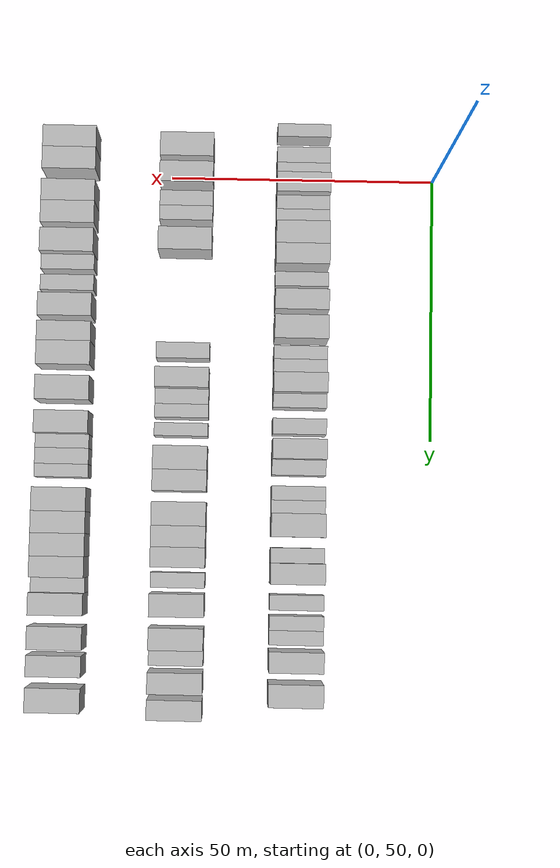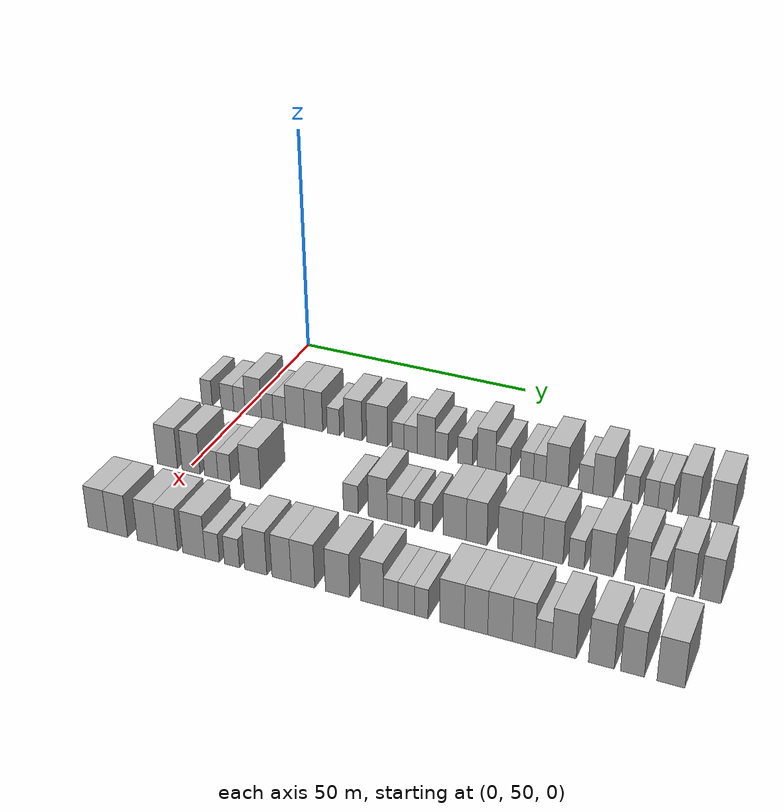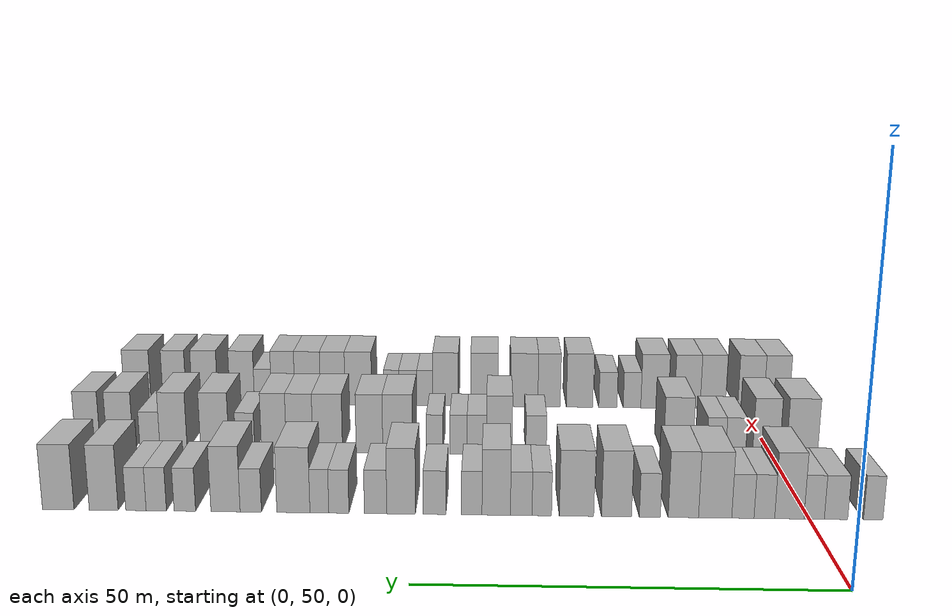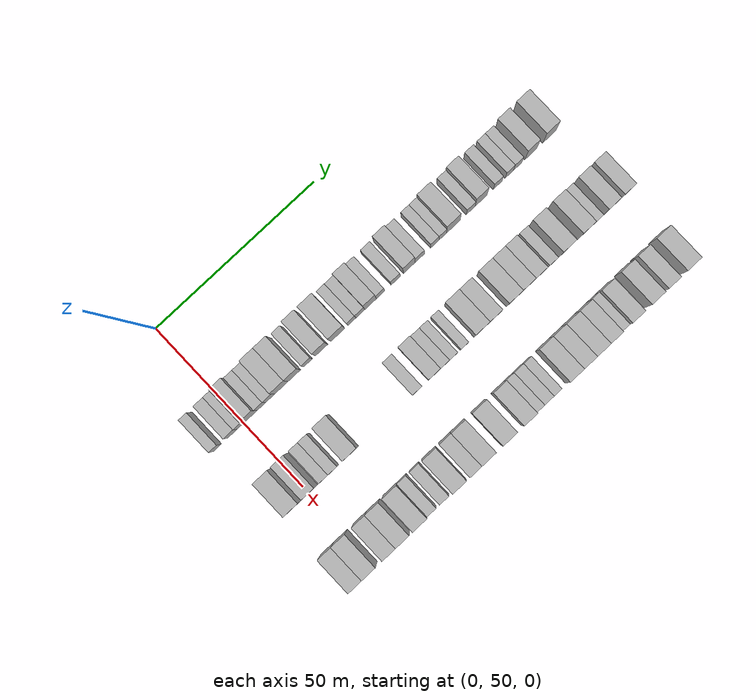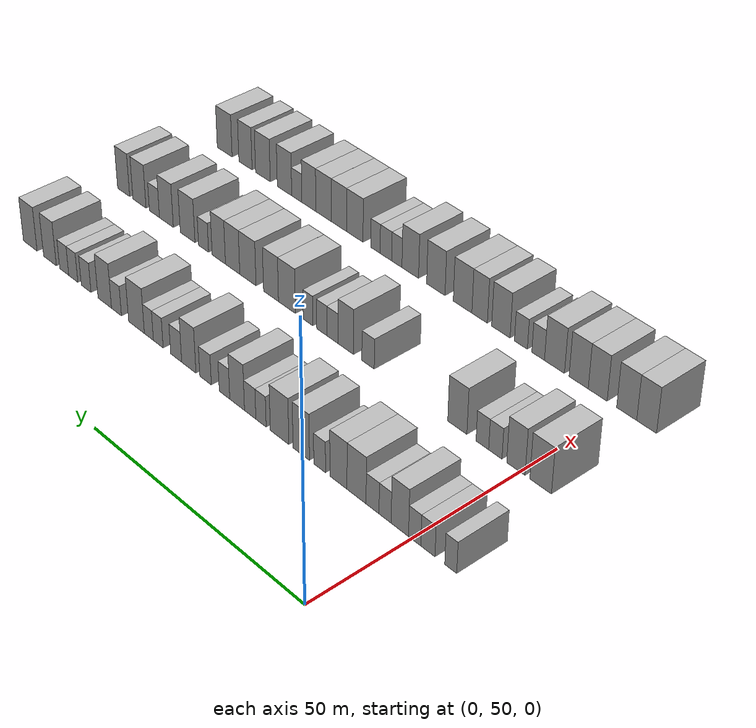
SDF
<sdf version="1.6">
 <world name="default">
  <model name="building_70">
   <static>1</static>
   <pose>25.0000 41.8707 0 0.000000 0.000000 0.000000</pose>
   <link name="link">
    <pose>0 0 3.00 0 0 0</pose>
    <collision name="collision"><geometry><box><size>10.0000 2.4584 6.0000</size></box></geometry></collision>
    <visual name="visual">
     <cast_shadows>0</cast_shadows>
     <geometry><box><size>10.0000 2.4584 6.0000</size></box></geometry>
     <material>
      <script>
       <uri>model://HANNAS_wall/materials/scripts</uri>
       <uri>model://HANNAS_wall/materials/textures</uri>
       <name>vrc/HANNAS_wall</name>
      </script>
     </material>
    </visual>
   </link>
  </model>
  <model name="building_71">
   <static>1</static>
   <pose>25.0000 46.5868 0 0.000000 0.000000 0.000000</pose>
   <link name="link">
    <pose>0 0 3.00 0 0 0</pose>
    <collision name="collision"><geometry><box><size>10.0000 2.9738 6.0000</size></box></geometry></collision>
    <visual name="visual">
     <cast_shadows>0</cast_shadows>
     <geometry><box><size>10.0000 2.9738 6.0000</size></box></geometry>
     <material>
      <script>
       <uri>model://HANNAS_wall/materials/scripts</uri>
       <uri>model://HANNAS_wall/materials/textures</uri>
       <name>vrc/HANNAS_wall</name>
      </script>
     </material>
    </visual>
   </link>
  </model>
  <model name="building_72">
   <static>1</static>
   <pose>25.0000 49.3671 0 0.000000 0.000000 0.000000</pose>
   <link name="link">
    <pose>0 0 3.00 0 0 0</pose>
    <collision name="collision"><geometry><box><size>10.0000 2.5867 6.0000</size></box></geometry></collision>
    <visual name="visual">
     <cast_shadows>0</cast_shadows>
     <geometry><box><size>10.0000 2.5867 6.0000</size></box></geometry>
     <material>
      <script>
       <uri>model://HANNAS_wall/materials/scripts</uri>
       <uri>model://HANNAS_wall/materials/textures</uri>
       <name>vrc/HANNAS_wall</name>
      </script>
     </material>
    </visual>
   </link>
  </model>
  <model name="building_73">
   <static>1</static>
   <pose>25.0000 52.5207 0 0.000000 0.000000 0.000000</pose>
   <link name="link">
    <pose>0 0 4.50 0 0 0</pose>
    <collision name="collision"><geometry><box><size>10.0000 3.7204 9.0000</size></box></geometry></collision>
    <visual name="visual">
     <cast_shadows>0</cast_shadows>
     <geometry><box><size>10.0000 3.7204 9.0000</size></box></geometry>
     <material>
      <script>
       <uri>model://HANNAS_wall/materials/scripts</uri>
       <uri>model://HANNAS_wall/materials/textures</uri>
       <name>vrc/HANNAS_wall</name>
      </script>
     </material>
    </visual>
   </link>
  </model>
  <model name="building_74">
   <static>1</static>
   <pose>25.0000 55.6958 0 0.000000 0.000000 0.000000</pose>
   <link name="link">
    <pose>0 0 3.00 0 0 0</pose>
    <collision name="collision"><geometry><box><size>10.0000 2.6298 6.0000</size></box></geometry></collision>
    <visual name="visual">
     <cast_shadows>0</cast_shadows>
     <geometry><box><size>10.0000 2.6298 6.0000</size></box></geometry>
     <material>
      <script>
       <uri>model://HANNAS_wall/materials/scripts</uri>
       <uri>model://HANNAS_wall/materials/textures</uri>
       <name>vrc/HANNAS_wall</name>
      </script>
     </material>
    </visual>
   </link>
  </model>
  <model name="building_75">
   <static>1</static>
   <pose>25.0000 58.4317 0 0.000000 0.000000 0.000000</pose>
   <link name="link">
    <pose>0 0 3.00 0 0 0</pose>
    <collision name="collision"><geometry><box><size>10.0000 2.8420 6.0000</size></box></geometry></collision>
    <visual name="visual">
     <cast_shadows>0</cast_shadows>
     <geometry><box><size>10.0000 2.8420 6.0000</size></box></geometry>
     <material>
      <script>
       <uri>model://HANNAS_wall/materials/scripts</uri>
       <uri>model://HANNAS_wall/materials/textures</uri>
       <name>vrc/HANNAS_wall</name>
      </script>
     </material>
    </visual>
   </link>
  </model>
  <model name="building_76">
   <static>1</static>
   <pose>25.0000 61.9709 0 0.000000 0.000000 0.000000</pose>
   <link name="link">
    <pose>0 0 4.50 0 0 0</pose>
    <collision name="collision"><geometry><box><size>10.0000 4.2364 9.0000</size></box></geometry></collision>
    <visual name="visual">
     <cast_shadows>0</cast_shadows>
     <geometry><box><size>10.0000 4.2364 9.0000</size></box></geometry>
     <material>
      <script>
       <uri>model://HANNAS_wall/materials/scripts</uri>
       <uri>model://HANNAS_wall/materials/textures</uri>
       <name>vrc/HANNAS_wall</name>
      </script>
     </material>
    </visual>
   </link>
  </model>
  <model name="building_77">
   <static>1</static>
   <pose>25.0000 66.0250 0 0.000000 0.000000 0.000000</pose>
   <link name="link">
    <pose>0 0 4.50 0 0 0</pose>
    <collision name="collision"><geometry><box><size>10.0000 3.8717 9.0000</size></box></geometry></collision>
    <visual name="visual">
     <cast_shadows>0</cast_shadows>
     <geometry><box><size>10.0000 3.8717 9.0000</size></box></geometry>
     <material>
      <script>
       <uri>model://HANNAS_wall/materials/scripts</uri>
       <uri>model://HANNAS_wall/materials/textures</uri>
       <name>vrc/HANNAS_wall</name>
      </script>
     </material>
    </visual>
   </link>
  </model>
  <model name="building_78">
   <static>1</static>
   <pose>25.0000 70.3104 0 0.000000 0.000000 0.000000</pose>
   <link name="link">
    <pose>0 0 3.00 0 0 0</pose>
    <collision name="collision"><geometry><box><size>10.0000 2.6993 6.0000</size></box></geometry></collision>
    <visual name="visual">
     <cast_shadows>0</cast_shadows>
     <geometry><box><size>10.0000 2.6993 6.0000</size></box></geometry>
     <material>
      <script>
       <uri>model://HANNAS_wall/materials/scripts</uri>
       <uri>model://HANNAS_wall/materials/textures</uri>
       <name>vrc/HANNAS_wall</name>
      </script>
     </material>
    </visual>
   </link>
  </model>
  <model name="building_79">
   <static>1</static>
   <pose>25.0000 74.5816 0 0.000000 0.000000 0.000000</pose>
   <link name="link">
    <pose>0 0 4.50 0 0 0</pose>
    <collision name="collision"><geometry><box><size>10.0000 3.8430 9.0000</size></box></geometry></collision>
    <visual name="visual">
     <cast_shadows>0</cast_shadows>
     <geometry><box><size>10.0000 3.8430 9.0000</size></box></geometry>
     <material>
      <script>
       <uri>model://HANNAS_wall/materials/scripts</uri>
       <uri>model://HANNAS_wall/materials/textures</uri>
       <name>vrc/HANNAS_wall</name>
      </script>
     </material>
    </visual>
   </link>
  </model>
  <model name="building_80">
   <static>1</static>
   <pose>25.0000 79.7122 0 0.000000 0.000000 0.000000</pose>
   <link name="link">
    <pose>0 0 4.50 0 0 0</pose>
    <collision name="collision"><geometry><box><size>10.0000 4.4182 9.0000</size></box></geometry></collision>
    <visual name="visual">
     <cast_shadows>0</cast_shadows>
     <geometry><box><size>10.0000 4.4182 9.0000</size></box></geometry>
     <material>
      <script>
       <uri>model://HANNAS_wall/materials/scripts</uri>
       <uri>model://HANNAS_wall/materials/textures</uri>
       <name>vrc/HANNAS_wall</name>
      </script>
     </material>
    </visual>
   </link>
  </model>
  <model name="building_81">
   <static>1</static>
   <pose>25.0000 84.1760 0 0.000000 0.000000 0.000000</pose>
   <link name="link">
    <pose>0 0 3.00 0 0 0</pose>
    <collision name="collision"><geometry><box><size>10.0000 2.5095 6.0000</size></box></geometry></collision>
    <visual name="visual">
     <cast_shadows>0</cast_shadows>
     <geometry><box><size>10.0000 2.5095 6.0000</size></box></geometry>
     <material>
      <script>
       <uri>model://HANNAS_wall/materials/scripts</uri>
       <uri>model://HANNAS_wall/materials/textures</uri>
       <name>vrc/HANNAS_wall</name>
      </script>
     </material>
    </visual>
   </link>
  </model>
  <model name="building_82">
   <static>1</static>
   <pose>25.0000 86.8219 0 0.000000 0.000000 0.000000</pose>
   <link name="link">
    <pose>0 0 3.00 0 0 0</pose>
    <collision name="collision"><geometry><box><size>10.0000 2.7822 6.0000</size></box></geometry></collision>
    <visual name="visual">
     <cast_shadows>0</cast_shadows>
     <geometry><box><size>10.0000 2.7822 6.0000</size></box></geometry>
     <material>
      <script>
       <uri>model://HANNAS_wall/materials/scripts</uri>
       <uri>model://HANNAS_wall/materials/textures</uri>
       <name>vrc/HANNAS_wall</name>
      </script>
     </material>
    </visual>
   </link>
  </model>
  <model name="building_83">
   <static>1</static>
   <pose>25.0000 90.0471 0 0.000000 0.000000 0.000000</pose>
   <link name="link">
    <pose>0 0 4.50 0 0 0</pose>
    <collision name="collision"><geometry><box><size>10.0000 3.6682 9.0000</size></box></geometry></collision>
    <visual name="visual">
     <cast_shadows>0</cast_shadows>
     <geometry><box><size>10.0000 3.6682 9.0000</size></box></geometry>
     <material>
      <script>
       <uri>model://HANNAS_wall/materials/scripts</uri>
       <uri>model://HANNAS_wall/materials/textures</uri>
       <name>vrc/HANNAS_wall</name>
      </script>
     </material>
    </visual>
   </link>
  </model>
  <model name="building_84">
   <static>1</static>
   <pose>25.0000 93.2055 0 0.000000 0.000000 0.000000</pose>
   <link name="link">
    <pose>0 0 3.00 0 0 0</pose>
    <collision name="collision"><geometry><box><size>10.0000 2.6487 6.0000</size></box></geometry></collision>
    <visual name="visual">
     <cast_shadows>0</cast_shadows>
     <geometry><box><size>10.0000 2.6487 6.0000</size></box></geometry>
     <material>
      <script>
       <uri>model://HANNAS_wall/materials/scripts</uri>
       <uri>model://HANNAS_wall/materials/textures</uri>
       <name>vrc/HANNAS_wall</name>
      </script>
     </material>
    </visual>
   </link>
  </model>
  <model name="building_85">
   <static>1</static>
   <pose>25.0000 98.0046 0 0.000000 0.000000 0.000000</pose>
   <link name="link">
    <pose>0 0 3.00 0 0 0</pose>
    <collision name="collision"><geometry><box><size>10.0000 2.9496 6.0000</size></box></geometry></collision>
    <visual name="visual">
     <cast_shadows>0</cast_shadows>
     <geometry><box><size>10.0000 2.9496 6.0000</size></box></geometry>
     <material>
      <script>
       <uri>model://HANNAS_wall/materials/scripts</uri>
       <uri>model://HANNAS_wall/materials/textures</uri>
       <name>vrc/HANNAS_wall</name>
      </script>
     </material>
    </visual>
   </link>
  </model>
  <model name="building_86">
   <static>1</static>
   <pose>25.0000 102.3375 0 0.000000 0.000000 0.000000</pose>
   <link name="link">
    <pose>0 0 4.50 0 0 0</pose>
    <collision name="collision"><geometry><box><size>10.0000 3.7161 9.0000</size></box></geometry></collision>
    <visual name="visual">
     <cast_shadows>0</cast_shadows>
     <geometry><box><size>10.0000 3.7161 9.0000</size></box></geometry>
     <material>
      <script>
       <uri>model://HANNAS_wall/materials/scripts</uri>
       <uri>model://HANNAS_wall/materials/textures</uri>
       <name>vrc/HANNAS_wall</name>
      </script>
     </material>
    </visual>
   </link>
  </model>
  <model name="building_87">
   <static>1</static>
   <pose>25.0000 105.6486 0 0.000000 0.000000 0.000000</pose>
   <link name="link">
    <pose>0 0 3.00 0 0 0</pose>
    <collision name="collision"><geometry><box><size>10.0000 2.9062 6.0000</size></box></geometry></collision>
    <visual name="visual">
     <cast_shadows>0</cast_shadows>
     <geometry><box><size>10.0000 2.9062 6.0000</size></box></geometry>
     <material>
      <script>
       <uri>model://HANNAS_wall/materials/scripts</uri>
       <uri>model://HANNAS_wall/materials/textures</uri>
       <name>vrc/HANNAS_wall</name>
      </script>
     </material>
    </visual>
   </link>
  </model>
  <model name="building_88">
   <static>1</static>
   <pose>25.0000 110.4103 0 0.000000 0.000000 0.000000</pose>
   <link name="link">
    <pose>0 0 3.00 0 0 0</pose>
    <collision name="collision"><geometry><box><size>10.0000 2.6171 6.0000</size></box></geometry></collision>
    <visual name="visual">
     <cast_shadows>0</cast_shadows>
     <geometry><box><size>10.0000 2.6171 6.0000</size></box></geometry>
     <material>
      <script>
       <uri>model://HANNAS_wall/materials/scripts</uri>
       <uri>model://HANNAS_wall/materials/textures</uri>
       <name>vrc/HANNAS_wall</name>
      </script>
     </material>
    </visual>
   </link>
  </model>
  <model name="building_89">
   <static>1</static>
   <pose>25.0000 112.9433 0 0.000000 0.000000 0.000000</pose>
   <link name="link">
    <pose>0 0 3.00 0 0 0</pose>
    <collision name="collision"><geometry><box><size>10.0000 2.4489 6.0000</size></box></geometry></collision>
    <visual name="visual">
     <cast_shadows>0</cast_shadows>
     <geometry><box><size>10.0000 2.4489 6.0000</size></box></geometry>
     <material>
      <script>
       <uri>model://HANNAS_wall/materials/scripts</uri>
       <uri>model://HANNAS_wall/materials/textures</uri>
       <name>vrc/HANNAS_wall</name>
      </script>
     </material>
    </visual>
   </link>
  </model>
  <model name="building_90">
   <static>1</static>
   <pose>25.0000 116.3250 0 0.000000 0.000000 0.000000</pose>
   <link name="link">
    <pose>0 0 4.50 0 0 0</pose>
    <collision name="collision"><geometry><box><size>10.0000 4.3145 9.0000</size></box></geometry></collision>
    <visual name="visual">
     <cast_shadows>0</cast_shadows>
     <geometry><box><size>10.0000 4.3145 9.0000</size></box></geometry>
     <material>
      <script>
       <uri>model://HANNAS_wall/materials/scripts</uri>
       <uri>model://HANNAS_wall/materials/textures</uri>
       <name>vrc/HANNAS_wall</name>
      </script>
     </material>
    </visual>
   </link>
  </model>
  <model name="building_91">
   <static>1</static>
   <pose>25.0000 121.8761 0 0.000000 0.000000 0.000000</pose>
   <link name="link">
    <pose>0 0 3.00 0 0 0</pose>
    <collision name="collision"><geometry><box><size>10.0000 2.7877 6.0000</size></box></geometry></collision>
    <visual name="visual">
     <cast_shadows>0</cast_shadows>
     <geometry><box><size>10.0000 2.7877 6.0000</size></box></geometry>
     <material>
      <script>
       <uri>model://HANNAS_wall/materials/scripts</uri>
       <uri>model://HANNAS_wall/materials/textures</uri>
       <name>vrc/HANNAS_wall</name>
      </script>
     </material>
    </visual>
   </link>
  </model>
  <model name="building_92">
   <static>1</static>
   <pose>25.0000 125.1792 0 0.000000 0.000000 0.000000</pose>
   <link name="link">
    <pose>0 0 4.50 0 0 0</pose>
    <collision name="collision"><geometry><box><size>10.0000 3.8187 9.0000</size></box></geometry></collision>
    <visual name="visual">
     <cast_shadows>0</cast_shadows>
     <geometry><box><size>10.0000 3.8187 9.0000</size></box></geometry>
     <material>
      <script>
       <uri>model://HANNAS_wall/materials/scripts</uri>
       <uri>model://HANNAS_wall/materials/textures</uri>
       <name>vrc/HANNAS_wall</name>
      </script>
     </material>
    </visual>
   </link>
  </model>
  <model name="building_93">
   <static>1</static>
   <pose>25.0000 130.4983 0 0.000000 0.000000 0.000000</pose>
   <link name="link">
    <pose>0 0 3.00 0 0 0</pose>
    <collision name="collision"><geometry><box><size>10.0000 2.8195 6.0000</size></box></geometry></collision>
    <visual name="visual">
     <cast_shadows>0</cast_shadows>
     <geometry><box><size>10.0000 2.8195 6.0000</size></box></geometry>
     <material>
      <script>
       <uri>model://HANNAS_wall/materials/scripts</uri>
       <uri>model://HANNAS_wall/materials/textures</uri>
       <name>vrc/HANNAS_wall</name>
      </script>
     </material>
    </visual>
   </link>
  </model>
  <model name="building_94">
   <static>1</static>
   <pose>25.0000 134.2378 0 0.000000 0.000000 0.000000</pose>
   <link name="link">
    <pose>0 0 3.00 0 0 0</pose>
    <collision name="collision"><geometry><box><size>10.0000 2.6595 6.0000</size></box></geometry></collision>
    <visual name="visual">
     <cast_shadows>0</cast_shadows>
     <geometry><box><size>10.0000 2.6595 6.0000</size></box></geometry>
     <material>
      <script>
       <uri>model://HANNAS_wall/materials/scripts</uri>
       <uri>model://HANNAS_wall/materials/textures</uri>
       <name>vrc/HANNAS_wall</name>
      </script>
     </material>
    </visual>
   </link>
  </model>
  <model name="building_95">
   <static>1</static>
   <pose>25.0000 136.9032 0 0.000000 0.000000 0.000000</pose>
   <link name="link">
    <pose>0 0 3.00 0 0 0</pose>
    <collision name="collision"><geometry><box><size>10.0000 2.6712 6.0000</size></box></geometry></collision>
    <visual name="visual">
     <cast_shadows>0</cast_shadows>
     <geometry><box><size>10.0000 2.6712 6.0000</size></box></geometry>
     <material>
      <script>
       <uri>model://HANNAS_wall/materials/scripts</uri>
       <uri>model://HANNAS_wall/materials/textures</uri>
       <name>vrc/HANNAS_wall</name>
      </script>
     </material>
    </visual>
   </link>
  </model>
  <model name="building_96">
   <static>1</static>
   <pose>25.0000 141.1386 0 0.000000 0.000000 0.000000</pose>
   <link name="link">
    <pose>0 0 4.50 0 0 0</pose>
    <collision name="collision"><geometry><box><size>10.0000 3.7997 9.0000</size></box></geometry></collision>
    <visual name="visual">
     <cast_shadows>0</cast_shadows>
     <geometry><box><size>10.0000 3.7997 9.0000</size></box></geometry>
     <material>
      <script>
       <uri>model://HANNAS_wall/materials/scripts</uri>
       <uri>model://HANNAS_wall/materials/textures</uri>
       <name>vrc/HANNAS_wall</name>
      </script>
     </material>
    </visual>
   </link>
  </model>
  <model name="building_97">
   <static>1</static>
   <pose>25.0000 147.1176 0 0.000000 0.000000 0.000000</pose>
   <link name="link">
    <pose>0 0 4.50 0 0 0</pose>
    <collision name="collision"><geometry><box><size>10.0000 4.1581 9.0000</size></box></geometry></collision>
    <visual name="visual">
     <cast_shadows>0</cast_shadows>
     <geometry><box><size>10.0000 4.1581 9.0000</size></box></geometry>
     <material>
      <script>
       <uri>model://HANNAS_wall/materials/scripts</uri>
       <uri>model://HANNAS_wall/materials/textures</uri>
       <name>vrc/HANNAS_wall</name>
      </script>
     </material>
    </visual>
   </link>
  </model>
  <model name="building_204">
   <static>1</static>
   <pose>47.0000 45.7612 0 0.000000 0.000000 0.000000</pose>
   <link name="link">
    <pose>0 0 4.50 0 0 0</pose>
    <collision name="collision"><geometry><box><size>10.0000 4.4546 9.0000</size></box></geometry></collision>
    <visual name="visual">
     <cast_shadows>0</cast_shadows>
     <geometry><box><size>10.0000 4.4546 9.0000</size></box></geometry>
     <material>
      <script>
       <uri>model://HANNAS_wall/materials/scripts</uri>
       <uri>model://HANNAS_wall/materials/textures</uri>
       <name>vrc/HANNAS_wall</name>
      </script>
     </material>
    </visual>
   </link>
  </model>
  <model name="building_205">
   <static>1</static>
   <pose>47.0000 50.9300 0 0.000000 0.000000 0.000000</pose>
   <link name="link">
    <pose>0 0 4.50 0 0 0</pose>
    <collision name="collision"><geometry><box><size>10.0000 3.8831 9.0000</size></box></geometry></collision>
    <visual name="visual">
     <cast_shadows>0</cast_shadows>
     <geometry><box><size>10.0000 3.8831 9.0000</size></box></geometry>
     <material>
      <script>
       <uri>model://HANNAS_wall/materials/scripts</uri>
       <uri>model://HANNAS_wall/materials/textures</uri>
       <name>vrc/HANNAS_wall</name>
      </script>
     </material>
    </visual>
   </link>
  </model>
  <model name="building_206">
   <static>1</static>
   <pose>47.0000 55.3016 0 0.000000 0.000000 0.000000</pose>
   <link name="link">
    <pose>0 0 3.00 0 0 0</pose>
    <collision name="collision"><geometry><box><size>10.0000 2.8601 6.0000</size></box></geometry></collision>
    <visual name="visual">
     <cast_shadows>0</cast_shadows>
     <geometry><box><size>10.0000 2.8601 6.0000</size></box></geometry>
     <material>
      <script>
       <uri>model://HANNAS_wall/materials/scripts</uri>
       <uri>model://HANNAS_wall/materials/textures</uri>
       <name>vrc/HANNAS_wall</name>
      </script>
     </material>
    </visual>
   </link>
  </model>
  <model name="building_207">
   <static>1</static>
   <pose>47.0000 58.1017 0 0.000000 0.000000 0.000000</pose>
   <link name="link">
    <pose>0 0 3.00 0 0 0</pose>
    <collision name="collision"><geometry><box><size>10.0000 2.7402 6.0000</size></box></geometry></collision>
    <visual name="visual">
     <cast_shadows>0</cast_shadows>
     <geometry><box><size>10.0000 2.7402 6.0000</size></box></geometry>
     <material>
      <script>
       <uri>model://HANNAS_wall/materials/scripts</uri>
       <uri>model://HANNAS_wall/materials/textures</uri>
       <name>vrc/HANNAS_wall</name>
      </script>
     </material>
    </visual>
   </link>
  </model>
  <model name="building_208">
   <static>1</static>
   <pose>47.0000 63.5970 0 0.000000 0.000000 0.000000</pose>
   <link name="link">
    <pose>0 0 4.50 0 0 0</pose>
    <collision name="collision"><geometry><box><size>10.0000 4.2502 9.0000</size></box></geometry></collision>
    <visual name="visual">
     <cast_shadows>0</cast_shadows>
     <geometry><box><size>10.0000 4.2502 9.0000</size></box></geometry>
     <material>
      <script>
       <uri>model://HANNAS_wall/materials/scripts</uri>
       <uri>model://HANNAS_wall/materials/textures</uri>
       <name>vrc/HANNAS_wall</name>
      </script>
     </material>
    </visual>
   </link>
  </model>
  <model name="building_209">
   <static>1</static>
   <pose>47.0000 84.1899 0 0.000000 0.000000 0.000000</pose>
   <link name="link">
    <pose>0 0 3.00 0 0 0</pose>
    <collision name="collision"><geometry><box><size>10.0000 2.9785 6.0000</size></box></geometry></collision>
    <visual name="visual">
     <cast_shadows>0</cast_shadows>
     <geometry><box><size>10.0000 2.9785 6.0000</size></box></geometry>
     <material>
      <script>
       <uri>model://HANNAS_wall/materials/scripts</uri>
       <uri>model://HANNAS_wall/materials/textures</uri>
       <name>vrc/HANNAS_wall</name>
      </script>
     </material>
    </visual>
   </link>
  </model>
  <model name="building_210">
   <static>1</static>
   <pose>47.0000 89.5419 0 0.000000 0.000000 0.000000</pose>
   <link name="link">
    <pose>0 0 4.50 0 0 0</pose>
    <collision name="collision"><geometry><box><size>10.0000 3.7255 9.0000</size></box></geometry></collision>
    <visual name="visual">
     <cast_shadows>0</cast_shadows>
     <geometry><box><size>10.0000 3.7255 9.0000</size></box></geometry>
     <material>
      <script>
       <uri>model://HANNAS_wall/materials/scripts</uri>
       <uri>model://HANNAS_wall/materials/textures</uri>
       <name>vrc/HANNAS_wall</name>
      </script>
     </material>
    </visual>
   </link>
  </model>
  <model name="building_211">
   <static>1</static>
   <pose>47.0000 92.8278 0 0.000000 0.000000 0.000000</pose>
   <link name="link">
    <pose>0 0 3.00 0 0 0</pose>
    <collision name="collision"><geometry><box><size>10.0000 2.8463 6.0000</size></box></geometry></collision>
    <visual name="visual">
     <cast_shadows>0</cast_shadows>
     <geometry><box><size>10.0000 2.8463 6.0000</size></box></geometry>
     <material>
      <script>
       <uri>model://HANNAS_wall/materials/scripts</uri>
       <uri>model://HANNAS_wall/materials/textures</uri>
       <name>vrc/HANNAS_wall</name>
      </script>
     </material>
    </visual>
   </link>
  </model>
  <model name="building_212">
   <static>1</static>
   <pose>47.0000 95.5161 0 0.000000 0.000000 0.000000</pose>
   <link name="link">
    <pose>0 0 3.00 0 0 0</pose>
    <collision name="collision"><geometry><box><size>10.0000 2.5302 6.0000</size></box></geometry></collision>
    <visual name="visual">
     <cast_shadows>0</cast_shadows>
     <geometry><box><size>10.0000 2.5302 6.0000</size></box></geometry>
     <material>
      <script>
       <uri>model://HANNAS_wall/materials/scripts</uri>
       <uri>model://HANNAS_wall/materials/textures</uri>
       <name>vrc/HANNAS_wall</name>
      </script>
     </material>
    </visual>
   </link>
  </model>
  <model name="building_213">
   <static>1</static>
   <pose>47.0000 98.9906 0 0.000000 0.000000 0.000000</pose>
   <link name="link">
    <pose>0 0 3.00 0 0 0</pose>
    <collision name="collision"><geometry><box><size>10.0000 2.4188 6.0000</size></box></geometry></collision>
    <visual name="visual">
     <cast_shadows>0</cast_shadows>
     <geometry><box><size>10.0000 2.4188 6.0000</size></box></geometry>
     <material>
      <script>
       <uri>model://HANNAS_wall/materials/scripts</uri>
       <uri>model://HANNAS_wall/materials/textures</uri>
       <name>vrc/HANNAS_wall</name>
      </script>
     </material>
    </visual>
   </link>
  </model>
  <model name="building_214">
   <static>1</static>
   <pose>47.0000 104.3875 0 0.000000 0.000000 0.000000</pose>
   <link name="link">
    <pose>0 0 4.50 0 0 0</pose>
    <collision name="collision"><geometry><box><size>10.0000 4.3751 9.0000</size></box></geometry></collision>
    <visual name="visual">
     <cast_shadows>0</cast_shadows>
     <geometry><box><size>10.0000 4.3751 9.0000</size></box></geometry>
     <material>
      <script>
       <uri>model://HANNAS_wall/materials/scripts</uri>
       <uri>model://HANNAS_wall/materials/textures</uri>
       <name>vrc/HANNAS_wall</name>
      </script>
     </material>
    </visual>
   </link>
  </model>
  <model name="building_215">
   <static>1</static>
   <pose>47.0000 108.5278 0 0.000000 0.000000 0.000000</pose>
   <link name="link">
    <pose>0 0 4.50 0 0 0</pose>
    <collision name="collision"><geometry><box><size>10.0000 3.9056 9.0000</size></box></geometry></collision>
    <visual name="visual">
     <cast_shadows>0</cast_shadows>
     <geometry><box><size>10.0000 3.9056 9.0000</size></box></geometry>
     <material>
      <script>
       <uri>model://HANNAS_wall/materials/scripts</uri>
       <uri>model://HANNAS_wall/materials/textures</uri>
       <name>vrc/HANNAS_wall</name>
      </script>
     </material>
    </visual>
   </link>
  </model>
  <model name="building_216">
   <static>1</static>
   <pose>47.0000 114.6567 0 0.000000 0.000000 0.000000</pose>
   <link name="link">
    <pose>0 0 4.50 0 0 0</pose>
    <collision name="collision"><geometry><box><size>10.0000 4.3522 9.0000</size></box></geometry></collision>
    <visual name="visual">
     <cast_shadows>0</cast_shadows>
     <geometry><box><size>10.0000 4.3522 9.0000</size></box></geometry>
     <material>
      <script>
       <uri>model://HANNAS_wall/materials/scripts</uri>
       <uri>model://HANNAS_wall/materials/textures</uri>
       <name>vrc/HANNAS_wall</name>
      </script>
     </material>
    </visual>
   </link>
  </model>
  <model name="building_217">
   <static>1</static>
   <pose>47.0000 118.7831 0 0.000000 0.000000 0.000000</pose>
   <link name="link">
    <pose>0 0 4.50 0 0 0</pose>
    <collision name="collision"><geometry><box><size>10.0000 3.9007 9.0000</size></box></geometry></collision>
    <visual name="visual">
     <cast_shadows>0</cast_shadows>
     <geometry><box><size>10.0000 3.9007 9.0000</size></box></geometry>
     <material>
      <script>
       <uri>model://HANNAS_wall/materials/scripts</uri>
       <uri>model://HANNAS_wall/materials/textures</uri>
       <name>vrc/HANNAS_wall</name>
      </script>
     </material>
    </visual>
   </link>
  </model>
  <model name="building_218">
   <static>1</static>
   <pose>47.0000 122.5697 0 0.000000 0.000000 0.000000</pose>
   <link name="link">
    <pose>0 0 4.50 0 0 0</pose>
    <collision name="collision"><geometry><box><size>10.0000 3.6725 9.0000</size></box></geometry></collision>
    <visual name="visual">
     <cast_shadows>0</cast_shadows>
     <geometry><box><size>10.0000 3.6725 9.0000</size></box></geometry>
     <material>
      <script>
       <uri>model://HANNAS_wall/materials/scripts</uri>
       <uri>model://HANNAS_wall/materials/textures</uri>
       <name>vrc/HANNAS_wall</name>
      </script>
     </material>
    </visual>
   </link>
  </model>
  <model name="building_219">
   <static>1</static>
   <pose>47.0000 126.8028 0 0.000000 0.000000 0.000000</pose>
   <link name="link">
    <pose>0 0 3.00 0 0 0</pose>
    <collision name="collision"><geometry><box><size>10.0000 2.7937 6.0000</size></box></geometry></collision>
    <visual name="visual">
     <cast_shadows>0</cast_shadows>
     <geometry><box><size>10.0000 2.7937 6.0000</size></box></geometry>
     <material>
      <script>
       <uri>model://HANNAS_wall/materials/scripts</uri>
       <uri>model://HANNAS_wall/materials/textures</uri>
       <name>vrc/HANNAS_wall</name>
      </script>
     </material>
    </visual>
   </link>
  </model>
  <model name="building_220">
   <static>1</static>
   <pose>47.0000 131.2919 0 0.000000 0.000000 0.000000</pose>
   <link name="link">
    <pose>0 0 4.50 0 0 0</pose>
    <collision name="collision"><geometry><box><size>10.0000 4.1845 9.0000</size></box></geometry></collision>
    <visual name="visual">
     <cast_shadows>0</cast_shadows>
     <geometry><box><size>10.0000 4.1845 9.0000</size></box></geometry>
     <material>
      <script>
       <uri>model://HANNAS_wall/materials/scripts</uri>
       <uri>model://HANNAS_wall/materials/textures</uri>
       <name>vrc/HANNAS_wall</name>
      </script>
     </material>
    </visual>
   </link>
  </model>
  <model name="building_221">
   <static>1</static>
   <pose>47.0000 137.3993 0 0.000000 0.000000 0.000000</pose>
   <link name="link">
    <pose>0 0 4.50 0 0 0</pose>
    <collision name="collision"><geometry><box><size>10.0000 4.0303 9.0000</size></box></geometry></collision>
    <visual name="visual">
     <cast_shadows>0</cast_shadows>
     <geometry><box><size>10.0000 4.0303 9.0000</size></box></geometry>
     <material>
      <script>
       <uri>model://HANNAS_wall/materials/scripts</uri>
       <uri>model://HANNAS_wall/materials/textures</uri>
       <name>vrc/HANNAS_wall</name>
      </script>
     </material>
    </visual>
   </link>
  </model>
  <model name="building_222">
   <static>1</static>
   <pose>47.0000 140.8887 0 0.000000 0.000000 0.000000</pose>
   <link name="link">
    <pose>0 0 3.00 0 0 0</pose>
    <collision name="collision"><geometry><box><size>10.0000 2.9484 6.0000</size></box></geometry></collision>
    <visual name="visual">
     <cast_shadows>0</cast_shadows>
     <geometry><box><size>10.0000 2.9484 6.0000</size></box></geometry>
     <material>
      <script>
       <uri>model://HANNAS_wall/materials/scripts</uri>
       <uri>model://HANNAS_wall/materials/textures</uri>
       <name>vrc/HANNAS_wall</name>
      </script>
     </material>
    </visual>
   </link>
  </model>
  <model name="building_223">
   <static>1</static>
   <pose>47.0000 145.3099 0 0.000000 0.000000 0.000000</pose>
   <link name="link">
    <pose>0 0 4.50 0 0 0</pose>
    <collision name="collision"><geometry><box><size>10.0000 3.8939 9.0000</size></box></geometry></collision>
    <visual name="visual">
     <cast_shadows>0</cast_shadows>
     <geometry><box><size>10.0000 3.8939 9.0000</size></box></geometry>
     <material>
      <script>
       <uri>model://HANNAS_wall/materials/scripts</uri>
       <uri>model://HANNAS_wall/materials/textures</uri>
       <name>vrc/HANNAS_wall</name>
      </script>
     </material>
    </visual>
   </link>
  </model>
  <model name="building_224">
   <static>1</static>
   <pose>47.0000 150.0738 0 0.000000 0.000000 0.000000</pose>
   <link name="link">
    <pose>0 0 4.50 0 0 0</pose>
    <collision name="collision"><geometry><box><size>10.0000 3.6339 9.0000</size></box></geometry></collision>
    <visual name="visual">
     <cast_shadows>0</cast_shadows>
     <geometry><box><size>10.0000 3.6339 9.0000</size></box></geometry>
     <material>
      <script>
       <uri>model://HANNAS_wall/materials/scripts</uri>
       <uri>model://HANNAS_wall/materials/textures</uri>
       <name>vrc/HANNAS_wall</name>
      </script>
     </material>
    </visual>
   </link>
  </model>
  <model name="building_315">
   <static>1</static>
   <pose>69.0000 44.6631 0 0.000000 0.000000 0.000000</pose>
   <link name="link">
    <pose>0 0 4.50 0 0 0</pose>
    <collision name="collision"><geometry><box><size>10.0000 4.0713 9.0000</size></box></geometry></collision>
    <visual name="visual">
     <cast_shadows>0</cast_shadows>
     <geometry><box><size>10.0000 4.0713 9.0000</size></box></geometry>
     <material>
      <script>
       <uri>model://HANNAS_wall/materials/scripts</uri>
       <uri>model://HANNAS_wall/materials/textures</uri>
       <name>vrc/HANNAS_wall</name>
      </script>
     </material>
    </visual>
   </link>
  </model>
  <model name="building_316">
   <static>1</static>
   <pose>69.0000 48.7881 0 0.000000 0.000000 0.000000</pose>
   <link name="link">
    <pose>0 0 4.50 0 0 0</pose>
    <collision name="collision"><geometry><box><size>10.0000 4.1787 9.0000</size></box></geometry></collision>
    <visual name="visual">
     <cast_shadows>0</cast_shadows>
     <geometry><box><size>10.0000 4.1787 9.0000</size></box></geometry>
     <material>
      <script>
       <uri>model://HANNAS_wall/materials/scripts</uri>
       <uri>model://HANNAS_wall/materials/textures</uri>
       <name>vrc/HANNAS_wall</name>
      </script>
     </material>
    </visual>
   </link>
  </model>
  <model name="building_317">
   <static>1</static>
   <pose>69.0000 54.8977 0 0.000000 0.000000 0.000000</pose>
   <link name="link">
    <pose>0 0 4.50 0 0 0</pose>
    <collision name="collision"><geometry><box><size>10.0000 4.0404 9.0000</size></box></geometry></collision>
    <visual name="visual">
     <cast_shadows>0</cast_shadows>
     <geometry><box><size>10.0000 4.0404 9.0000</size></box></geometry>
     <material>
      <script>
       <uri>model://HANNAS_wall/materials/scripts</uri>
       <uri>model://HANNAS_wall/materials/textures</uri>
       <name>vrc/HANNAS_wall</name>
      </script>
     </material>
    </visual>
   </link>
  </model>
  <model name="building_318">
   <static>1</static>
   <pose>69.0000 58.9950 0 0.000000 0.000000 0.000000</pose>
   <link name="link">
    <pose>0 0 4.50 0 0 0</pose>
    <collision name="collision"><geometry><box><size>10.0000 4.1543 9.0000</size></box></geometry></collision>
    <visual name="visual">
     <cast_shadows>0</cast_shadows>
     <geometry><box><size>10.0000 4.1543 9.0000</size></box></geometry>
     <material>
      <script>
       <uri>model://HANNAS_wall/materials/scripts</uri>
       <uri>model://HANNAS_wall/materials/textures</uri>
       <name>vrc/HANNAS_wall</name>
      </script>
     </material>
    </visual>
   </link>
  </model>
  <model name="building_319">
   <static>1</static>
   <pose>69.0000 64.2846 0 0.000000 0.000000 0.000000</pose>
   <link name="link">
    <pose>0 0 4.50 0 0 0</pose>
    <collision name="collision"><geometry><box><size>10.0000 4.4249 9.0000</size></box></geometry></collision>
    <visual name="visual">
     <cast_shadows>0</cast_shadows>
     <geometry><box><size>10.0000 4.4249 9.0000</size></box></geometry>
     <material>
      <script>
       <uri>model://HANNAS_wall/materials/scripts</uri>
       <uri>model://HANNAS_wall/materials/textures</uri>
       <name>vrc/HANNAS_wall</name>
      </script>
     </material>
    </visual>
   </link>
  </model>
  <model name="building_320">
   <static>1</static>
   <pose>69.0000 67.9168 0 0.000000 0.000000 0.000000</pose>
   <link name="link">
    <pose>0 0 3.00 0 0 0</pose>
    <collision name="collision"><geometry><box><size>10.0000 2.8393 6.0000</size></box></geometry></collision>
    <visual name="visual">
     <cast_shadows>0</cast_shadows>
     <geometry><box><size>10.0000 2.8393 6.0000</size></box></geometry>
     <material>
      <script>
       <uri>model://HANNAS_wall/materials/scripts</uri>
       <uri>model://HANNAS_wall/materials/textures</uri>
       <name>vrc/HANNAS_wall</name>
      </script>
     </material>
    </visual>
   </link>
  </model>
  <model name="building_321">
   <static>1</static>
   <pose>69.0000 71.8081 0 0.000000 0.000000 0.000000</pose>
   <link name="link">
    <pose>0 0 3.00 0 0 0</pose>
    <collision name="collision"><geometry><box><size>10.0000 2.9432 6.0000</size></box></geometry></collision>
    <visual name="visual">
     <cast_shadows>0</cast_shadows>
     <geometry><box><size>10.0000 2.9432 6.0000</size></box></geometry>
     <material>
      <script>
       <uri>model://HANNAS_wall/materials/scripts</uri>
       <uri>model://HANNAS_wall/materials/textures</uri>
       <name>vrc/HANNAS_wall</name>
      </script>
     </material>
    </visual>
   </link>
  </model>
  <model name="building_322">
   <static>1</static>
   <pose>69.0000 76.4097 0 0.000000 0.000000 0.000000</pose>
   <link name="link">
    <pose>0 0 4.50 0 0 0</pose>
    <collision name="collision"><geometry><box><size>10.0000 4.2601 9.0000</size></box></geometry></collision>
    <visual name="visual">
     <cast_shadows>0</cast_shadows>
     <geometry><box><size>10.0000 4.2601 9.0000</size></box></geometry>
     <material>
      <script>
       <uri>model://HANNAS_wall/materials/scripts</uri>
       <uri>model://HANNAS_wall/materials/textures</uri>
       <name>vrc/HANNAS_wall</name>
      </script>
     </material>
    </visual>
   </link>
  </model>
  <model name="building_323">
   <static>1</static>
   <pose>69.0000 81.3606 0 0.000000 0.000000 0.000000</pose>
   <link name="link">
    <pose>0 0 4.50 0 0 0</pose>
    <collision name="collision"><geometry><box><size>10.0000 3.6416 9.0000</size></box></geometry></collision>
    <visual name="visual">
     <cast_shadows>0</cast_shadows>
     <geometry><box><size>10.0000 3.6416 9.0000</size></box></geometry>
     <material>
      <script>
       <uri>model://HANNAS_wall/materials/scripts</uri>
       <uri>model://HANNAS_wall/materials/textures</uri>
       <name>vrc/HANNAS_wall</name>
      </script>
     </material>
    </visual>
   </link>
  </model>
  <model name="building_324">
   <static>1</static>
   <pose>69.0000 85.4045 0 0.000000 0.000000 0.000000</pose>
   <link name="link">
    <pose>0 0 4.50 0 0 0</pose>
    <collision name="collision"><geometry><box><size>10.0000 4.4462 9.0000</size></box></geometry></collision>
    <visual name="visual">
     <cast_shadows>0</cast_shadows>
     <geometry><box><size>10.0000 4.4462 9.0000</size></box></geometry>
     <material>
      <script>
       <uri>model://HANNAS_wall/materials/scripts</uri>
       <uri>model://HANNAS_wall/materials/textures</uri>
       <name>vrc/HANNAS_wall</name>
      </script>
     </material>
    </visual>
   </link>
  </model>
  <model name="building_325">
   <static>1</static>
   <pose>69.0000 91.8737 0 0.000000 0.000000 0.000000</pose>
   <link name="link">
    <pose>0 0 4.50 0 0 0</pose>
    <collision name="collision"><geometry><box><size>10.0000 4.4921 9.0000</size></box></geometry></collision>
    <visual name="visual">
     <cast_shadows>0</cast_shadows>
     <geometry><box><size>10.0000 4.4921 9.0000</size></box></geometry>
     <material>
      <script>
       <uri>model://HANNAS_wall/materials/scripts</uri>
       <uri>model://HANNAS_wall/materials/textures</uri>
       <name>vrc/HANNAS_wall</name>
      </script>
     </material>
    </visual>
   </link>
  </model>
  <model name="building_326">
   <static>1</static>
   <pose>69.0000 98.1985 0 0.000000 0.000000 0.000000</pose>
   <link name="link">
    <pose>0 0 4.50 0 0 0</pose>
    <collision name="collision"><geometry><box><size>10.0000 4.1576 9.0000</size></box></geometry></collision>
    <visual name="visual">
     <cast_shadows>0</cast_shadows>
     <geometry><box><size>10.0000 4.1576 9.0000</size></box></geometry>
     <material>
      <script>
       <uri>model://HANNAS_wall/materials/scripts</uri>
       <uri>model://HANNAS_wall/materials/textures</uri>
       <name>vrc/HANNAS_wall</name>
      </script>
     </material>
    </visual>
   </link>
  </model>
  <model name="building_327">
   <static>1</static>
   <pose>69.0000 101.5722 0 0.000000 0.000000 0.000000</pose>
   <link name="link">
    <pose>0 0 3.00 0 0 0</pose>
    <collision name="collision"><geometry><box><size>10.0000 2.5898 6.0000</size></box></geometry></collision>
    <visual name="visual">
     <cast_shadows>0</cast_shadows>
     <geometry><box><size>10.0000 2.5898 6.0000</size></box></geometry>
     <material>
      <script>
       <uri>model://HANNAS_wall/materials/scripts</uri>
       <uri>model://HANNAS_wall/materials/textures</uri>
       <name>vrc/HANNAS_wall</name>
      </script>
     </material>
    </visual>
   </link>
  </model>
  <model name="building_328">
   <static>1</static>
   <pose>69.0000 104.3441 0 0.000000 0.000000 0.000000</pose>
   <link name="link">
    <pose>0 0 3.00 0 0 0</pose>
    <collision name="collision"><geometry><box><size>10.0000 2.9540 6.0000</size></box></geometry></collision>
    <visual name="visual">
     <cast_shadows>0</cast_shadows>
     <geometry><box><size>10.0000 2.9540 6.0000</size></box></geometry>
     <material>
      <script>
       <uri>model://HANNAS_wall/materials/scripts</uri>
       <uri>model://HANNAS_wall/materials/textures</uri>
       <name>vrc/HANNAS_wall</name>
      </script>
     </material>
    </visual>
   </link>
  </model>
  <model name="building_329">
   <static>1</static>
   <pose>69.0000 107.0396 0 0.000000 0.000000 0.000000</pose>
   <link name="link">
    <pose>0 0 3.00 0 0 0</pose>
    <collision name="collision"><geometry><box><size>10.0000 2.4369 6.0000</size></box></geometry></collision>
    <visual name="visual">
     <cast_shadows>0</cast_shadows>
     <geometry><box><size>10.0000 2.4369 6.0000</size></box></geometry>
     <material>
      <script>
       <uri>model://HANNAS_wall/materials/scripts</uri>
       <uri>model://HANNAS_wall/materials/textures</uri>
       <name>vrc/HANNAS_wall</name>
      </script>
     </material>
    </visual>
   </link>
  </model>
  <model name="building_330">
   <static>1</static>
   <pose>69.0000 112.4270 0 0.000000 0.000000 0.000000</pose>
   <link name="link">
    <pose>0 0 4.50 0 0 0</pose>
    <collision name="collision"><geometry><box><size>10.0000 4.3378 9.0000</size></box></geometry></collision>
    <visual name="visual">
     <cast_shadows>0</cast_shadows>
     <geometry><box><size>10.0000 4.3378 9.0000</size></box></geometry>
     <material>
      <script>
       <uri>model://HANNAS_wall/materials/scripts</uri>
       <uri>model://HANNAS_wall/materials/textures</uri>
       <name>vrc/HANNAS_wall</name>
      </script>
     </material>
    </visual>
   </link>
  </model>
  <model name="building_331">
   <static>1</static>
   <pose>69.0000 116.6072 0 0.000000 0.000000 0.000000</pose>
   <link name="link">
    <pose>0 0 4.50 0 0 0</pose>
    <collision name="collision"><geometry><box><size>10.0000 4.0226 9.0000</size></box></geometry></collision>
    <visual name="visual">
     <cast_shadows>0</cast_shadows>
     <geometry><box><size>10.0000 4.0226 9.0000</size></box></geometry>
     <material>
      <script>
       <uri>model://HANNAS_wall/materials/scripts</uri>
       <uri>model://HANNAS_wall/materials/textures</uri>
       <name>vrc/HANNAS_wall</name>
      </script>
     </material>
    </visual>
   </link>
  </model>
  <model name="building_332">
   <static>1</static>
   <pose>69.0000 120.7241 0 0.000000 0.000000 0.000000</pose>
   <link name="link">
    <pose>0 0 4.50 0 0 0</pose>
    <collision name="collision"><geometry><box><size>10.0000 4.2111 9.0000</size></box></geometry></collision>
    <visual name="visual">
     <cast_shadows>0</cast_shadows>
     <geometry><box><size>10.0000 4.2111 9.0000</size></box></geometry>
     <material>
      <script>
       <uri>model://HANNAS_wall/materials/scripts</uri>
       <uri>model://HANNAS_wall/materials/textures</uri>
       <name>vrc/HANNAS_wall</name>
      </script>
     </material>
    </visual>
   </link>
  </model>
  <model name="building_333">
   <static>1</static>
   <pose>69.0000 124.7517 0 0.000000 0.000000 0.000000</pose>
   <link name="link">
    <pose>0 0 4.50 0 0 0</pose>
    <collision name="collision"><geometry><box><size>10.0000 3.8440 9.0000</size></box></geometry></collision>
    <visual name="visual">
     <cast_shadows>0</cast_shadows>
     <geometry><box><size>10.0000 3.8440 9.0000</size></box></geometry>
     <material>
      <script>
       <uri>model://HANNAS_wall/materials/scripts</uri>
       <uri>model://HANNAS_wall/materials/textures</uri>
       <name>vrc/HANNAS_wall</name>
      </script>
     </material>
    </visual>
   </link>
  </model>
  <model name="building_334">
   <static>1</static>
   <pose>69.0000 128.0789 0 0.000000 0.000000 0.000000</pose>
   <link name="link">
    <pose>0 0 3.00 0 0 0</pose>
    <collision name="collision"><geometry><box><size>10.0000 2.8105 6.0000</size></box></geometry></collision>
    <visual name="visual">
     <cast_shadows>0</cast_shadows>
     <geometry><box><size>10.0000 2.8105 6.0000</size></box></geometry>
     <material>
      <script>
       <uri>model://HANNAS_wall/materials/scripts</uri>
       <uri>model://HANNAS_wall/materials/textures</uri>
       <name>vrc/HANNAS_wall</name>
      </script>
     </material>
    </visual>
   </link>
  </model>
  <model name="building_335">
   <static>1</static>
   <pose>69.0000 131.5022 0 0.000000 0.000000 0.000000</pose>
   <link name="link">
    <pose>0 0 4.50 0 0 0</pose>
    <collision name="collision"><geometry><box><size>10.0000 4.0361 9.0000</size></box></geometry></collision>
    <visual name="visual">
     <cast_shadows>0</cast_shadows>
     <geometry><box><size>10.0000 4.0361 9.0000</size></box></geometry>
     <material>
      <script>
       <uri>model://HANNAS_wall/materials/scripts</uri>
       <uri>model://HANNAS_wall/materials/textures</uri>
       <name>vrc/HANNAS_wall</name>
      </script>
     </material>
    </visual>
   </link>
  </model>
  <model name="building_336">
   <static>1</static>
   <pose>69.0000 137.6210 0 0.000000 0.000000 0.000000</pose>
   <link name="link">
    <pose>0 0 4.50 0 0 0</pose>
    <collision name="collision"><geometry><box><size>10.0000 4.2015 9.0000</size></box></geometry></collision>
    <visual name="visual">
     <cast_shadows>0</cast_shadows>
     <geometry><box><size>10.0000 4.2015 9.0000</size></box></geometry>
     <material>
      <script>
       <uri>model://HANNAS_wall/materials/scripts</uri>
       <uri>model://HANNAS_wall/materials/textures</uri>
       <name>vrc/HANNAS_wall</name>
      </script>
     </material>
    </visual>
   </link>
  </model>
  <model name="building_337">
   <static>1</static>
   <pose>69.0000 142.6342 0 0.000000 0.000000 0.000000</pose>
   <link name="link">
    <pose>0 0 4.50 0 0 0</pose>
    <collision name="collision"><geometry><box><size>10.0000 3.8247 9.0000</size></box></geometry></collision>
    <visual name="visual">
     <cast_shadows>0</cast_shadows>
     <geometry><box><size>10.0000 3.8247 9.0000</size></box></geometry>
     <material>
      <script>
       <uri>model://HANNAS_wall/materials/scripts</uri>
       <uri>model://HANNAS_wall/materials/textures</uri>
       <name>vrc/HANNAS_wall</name>
      </script>
     </material>
    </visual>
   </link>
  </model>
  <model name="building_338">
   <static>1</static>
   <pose>69.0000 148.7472 0 0.000000 0.000000 0.000000</pose>
   <link name="link">
    <pose>0 0 4.50 0 0 0</pose>
    <collision name="collision"><geometry><box><size>10.0000 4.4014 9.0000</size></box></geometry></collision>
    <visual name="visual">
     <cast_shadows>0</cast_shadows>
     <geometry><box><size>10.0000 4.4014 9.0000</size></box></geometry>
     <material>
      <script>
       <uri>model://HANNAS_wall/materials/scripts</uri>
       <uri>model://HANNAS_wall/materials/textures</uri>
       <name>vrc/HANNAS_wall</name>
      </script>
     </material>
    </visual>
   </link>
  </model>
 </world>
</sdf>
